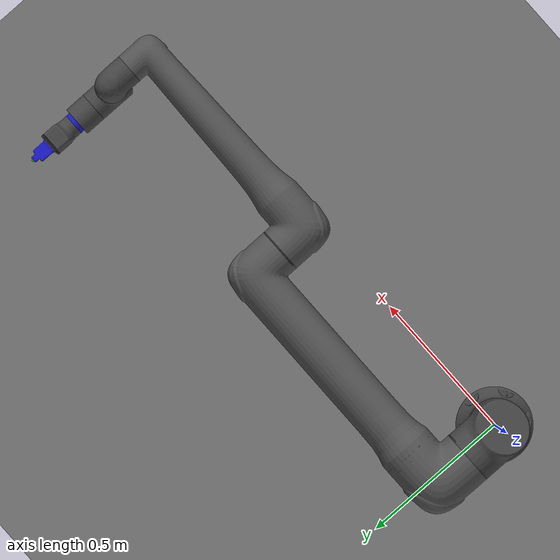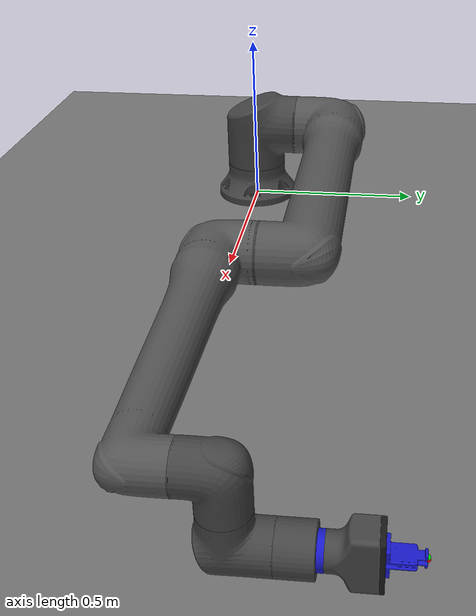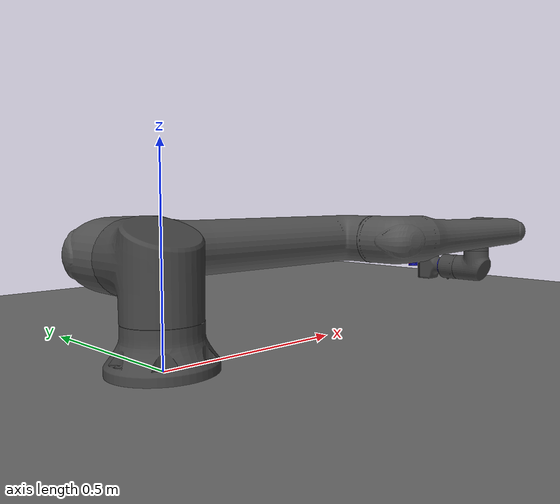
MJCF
<mujoco model="ur20">
  <compiler angle="radian" meshdir=".." autolimits="true"/>

  <option timestep="0.002" integrator="implicitfast" gravity="0 0 -9.81"/>

  <visual>
    <headlight ambient="0.35 0.35 0.35" diffuse="0.7 0.7 0.7" specular="0.5 0.5 0.5"/>
    <quality shadowsize="2048"/>
  </visual>

  <asset>
    <mesh name="base_col"     file="meshes/collision/base.stl"/>
    <mesh name="shoulder_col" file="meshes/collision/shoulder.stl"/>
    <mesh name="upperarm_col" file="meshes/collision/upperarm.stl"/>
    <mesh name="forearm_col"  file="meshes/collision/forearm.stl"/>
    <mesh name="wrist1_col"   file="meshes/collision/wrist1.stl"/>
    <mesh name="wrist2_col"   file="meshes/collision/wrist2.stl"/>
    <mesh name="wrist3_col"   file="meshes/collision/wrist3.stl"/>
    <mesh name="2FG14_basep1_col" file="meshes/collision/2FG14_basep1.STL"/>
    <mesh name="2FG14_basep2_col" file="meshes/collision/2FG14_basep2.STL"/>
    <mesh name="2FG14_basep3_col" file="meshes/collision/2FG14_basep3.STL"/>
    <mesh name="2FG14_gripper_finger_col" file="meshes/collision/2FG14_gripper_finger.STL"/>

    <mesh name="base_vis"     file="meshes/visual/base.obj"/>
    <mesh name="shoulder_vis" file="meshes/visual/shoulder.obj"/>
    <mesh name="upperarm_vis" file="meshes/visual/upperarm.obj"/>
    <mesh name="forearm_vis"  file="meshes/visual/forearm.obj"/>
    <mesh name="wrist1_vis"   file="meshes/visual/wrist1.obj"/>
    <mesh name="wrist2_vis"   file="meshes/visual/wrist2.obj"/>
    <mesh name="wrist3_vis"   file="meshes/visual/wrist3.obj"/>

    <material name="ur_metal"
              rgba="0.27 0.27 0.27 1"
              specular="0.85"
              shininess="0.75"
              reflectance="0.1"/>
    <material name="ur_link"
              rgba="0.33 0.33 0.33 1"
              specular="0.7"
              shininess="0.6"
              reflectance="0.05"/>
    <material name="floor_mat"
              rgba="0.45 0.45 0.45 1"
              specular="0.1"
              shininess="0.1"/>
    <material name="blue_plastic"
              rgba="0.1 0.1 0.8 1"
              specular="0.1"
              shininess="0.1"/>
    <material name="black_plastic"
              rgba="0.1 0.1 0.1 1"
              specular="0.1"
              shininess="0.1"/>
  </asset>

  <contact>
    <exclude body1="world"          body2="shoulder_link"/>
    <exclude body1="shoulder_link"  body2="upper_arm_link"/>
    <exclude body1="upper_arm_link" body2="forearm_link"/>
    <exclude body1="forearm_link"   body2="wrist_1_link"/>
    <exclude body1="wrist_1_link"   body2="wrist_2_link"/>
    <exclude body1="wrist_2_link"   body2="wrist_3_link"/>
    <!--might need to exclude more pairs for the gripper-->
  </contact>

  <worldbody>
    <light name="key"  pos="1 -1 3"  dir="-0.3 0.3 -1" diffuse="0.8 0.8 0.8" specular="0.4 0.4 0.4" castshadow="true"/>
    <light name="fill" pos="-2 1 2"  dir="0.5 -0.3 -1" diffuse="0.35 0.35 0.35" specular="0.1 0.1 0.1" castshadow="false"/>

    <geom name="floor" type="plane" size="2 2 0.1" material="floor_mat" contype="1" conaffinity="1"/>

    <geom name="base_vis" pos="0 0 0" quat="-1 0 0 0" type="mesh" mesh="base_vis"
          group="0" material="ur_metal" contype="0" conaffinity="0"/>
    <geom name="base_col" pos="0 0 0" quat="-1 0 0 0" type="mesh" mesh="base_col"
          group="3" contype="1" conaffinity="1"/>

    <!-- shoulder_link z-height from official URDF d1 = 0.2363 m -->
    <body name="shoulder_link" pos="0 0 0.2363" quat="0 0 0 1">
      <inertial pos="0 -0.0062 -0.061" quat="0.843524 0.480626 0.117639 -0.208871"
                mass="16.343" diaginertia="0.0887394 0.0883735 0.0720472"/>
      <joint name="shoulder_pan_joint" pos="0 0 0" axis="0 0 1"
             range="-6.28319 6.28319" actuatorfrcrange="-738 738"
             armature="0.1" damping="500"/>
      <geom name="shoulder_vis" quat="0 0 0 1" type="mesh" mesh="shoulder_vis"
            group="0" material="ur_metal" contype="0" conaffinity="0"/>
      <geom name="shoulder_col" quat="0 0 0 1" type="mesh" mesh="shoulder_col"
            group="3" contype="1" conaffinity="1"/>

      <body name="upper_arm_link" quat="0.707107 0.707107 0 0">
        <inertial pos="-0.3394 0 0.2098" quat="0.502566 0.497435 0.496798 0.503168"
                  mass="29.632" diaginertia="4.6659 4.63539 0.146106"/>
        <joint name="shoulder_lift_joint" pos="0 0 0" axis="0 0 1"
               range="-6.28319 6.28319" actuatorfrcrange="-738 738"
               armature="0.1" damping="500"/>
        <geom name="upperarm_vis" pos="0 0 0.26" quat="0.5 0.5 -0.5 -0.5" type="mesh" mesh="upperarm_vis"
              group="0" material="ur_link" contype="0" conaffinity="0"/>
        <geom name="upperarm_col" pos="0 0 0.26" quat="0.5 0.5 -0.5 -0.5" type="mesh" mesh="upperarm_col"
              group="3" contype="1" conaffinity="1"/>

        <!-- forearm pos from official URDF a2 = -0.862 m -->
        <body name="forearm_link" pos="-0.862 0 0">
          <inertial pos="-0.4053 0 0.0604" quat="0.510462 0.48933 0.490588 0.509223"
                    mass="7.879" diaginertia="0.75763 0.754423 0.0249668"/>
          <joint name="elbow_joint" pos="0 0 0" axis="0 0 1"
                 range="-3.14159 3.14159" actuatorfrcrange="-433 433"
                 armature="0.1" damping="300"/>
          <geom name="forearm_vis" pos="0 0 0.043" quat="0.5 0.5 -0.5 -0.5" type="mesh" mesh="forearm_vis"
                group="0" material="ur_link" contype="0" conaffinity="0"/>
          <geom name="forearm_col" pos="0 0 0.043" quat="0.5 0.5 -0.5 -0.5" type="mesh" mesh="forearm_col"
                group="3" contype="1" conaffinity="1"/>

          <!-- wrist_1 pos from official URDF a3=-0.7287, d4=0.201 -->
          <body name="wrist_1_link" pos="-0.7287 0 0.201">
            <inertial pos="0 -0.0393 -0.0026" quat="0.989529 0.121355 0.0147064 -0.0767408"
                      mass="3.054" diaginertia="0.00555247 0.00545771 0.00392982"/>
            <joint name="wrist_1_joint" pos="0 0 0" axis="0 0 1"
                   range="-6.28319 6.28319"
                   armature="0.05" damping="80"/>
            <geom name="wrist1_vis" pos="0 0 -0.0775" quat="0.707107 0.707107 0 0" type="mesh" mesh="wrist1_vis"
                  group="0" material="ur_metal" contype="0" conaffinity="0"/>
            <geom name="wrist1_col" pos="0 0 -0.0775" quat="0.707107 0.707107 0 0" type="mesh" mesh="wrist1_col"
                  group="3" contype="1" conaffinity="1"/>

            <!-- wrist_2 pos from official URDF d5=0.1593 -->
            <body name="wrist_2_link" pos="0 -0.1593 0" quat="0.707107 0.707107 0 0">
              <inertial pos="0 0.0379 -0.0024" quat="0.489074 -0.0502817 0.102168 0.864777"
                        mass="3.126" diaginertia="0.00586894 0.00585713 0.00418393"/>
              <joint name="wrist_2_joint" pos="0 0 0" axis="0 0 1"
                     range="-6.28319 6.28319"
                     armature="0.05" damping="80"/>
              <geom name="wrist2_vis" pos="0 0 -0.0749" quat="1 0 0 0" type="mesh" mesh="wrist2_vis"
                    group="0" material="ur_metal" contype="0" conaffinity="0"/>
              <geom name="wrist2_col" pos="0 0 -0.0749" quat="1 0 0 0" type="mesh" mesh="wrist2_col"
                    group="3" contype="1" conaffinity="1"/>

              <!-- wrist_3 pos from official URDF d6=0.1543 -->
              <body name="wrist_3_link" pos="0 0.1543 0" quat="0.707107 -0.707107 0 0">
                <inertial pos="0 0 -0.0293" quat="0.5 0.5 -0.5 0.5"
                          mass="0.926" diaginertia="0.00117 0.00092 0.00091"/>
                <joint name="wrist_3_joint" pos="0 0 0" axis="0 0 1"
                       range="-6.28319 6.28319"
                       armature="0.05" damping="40"/>
                <geom name="wrist3_vis" pos="0 0 -0.07" quat="0.707107 0.707107 0 0" type="mesh" mesh="wrist3_vis"
                      group="0" material="ur_metal" contype="0" conaffinity="0"/>
                <geom name="wrist3_col" pos="0 0 -0.07" quat="0.707107 0.707107 0 0" type="mesh" mesh="wrist3_col"
                      group="3" contype="1" conaffinity="1"/>

                <!--add the gripper here, basep1 through 3 is one piece with two fingers-->
                <body name="gripper" pos="0 0 0.0" quat="1.0 0.0 0 0">
                  <geom name="2FG14_basep1_col" pos="0 0 0" quat="1 0 0 0" type="mesh" mesh="2FG14_basep1_col"
                        group="0" material="blue_plastic" contype="1" conaffinity="1" density="2200"/>
                  <geom name="2FG14_basep2_col" pos="0 0 0.013" quat="1 0 0 0" type="mesh" mesh="2FG14_basep2_col"
                        group="0" material="ur_metal" contype="1" conaffinity="1" density="5000"/>
                  <geom name="2FG14_basep3_col" pos="0.0 0 .103" quat="0.707107 0 0 0.707107" type="mesh" mesh="2FG14_basep3_col"
                        group="0" material="black_plastic" contype="1" conaffinity="1" density="5000"/>
                  <site name="ee_site" pos="0 0 0" size="0.01" rgba="1 0 0 1"/>

                  <!-- finger bodies: slide joints allow symmetric opening/closing -->
                  <body name="finger_left" pos="0.0 -0.0025 .1137" quat="1 0 0 0">
                    <joint name="finger_left_slide" type="slide" pos="0 0 0" axis="0 -1 0"
                           range="-0.04 0.04" damping="50"/>
                    <geom name="finger_left_col" pos="0 0 0" quat="1 0 0 0" density="5000" type="mesh" mesh="2FG14_gripper_finger_col"
                          group="0" material="blue_plastic" friction="1 0.5 0.01" contype="1" conaffinity="1" />
                    <site name="finger_left_tip" pos="0.0 0.0 0.069" size="0.005" rgba="1 0 0 1"/>
                  </body>

                  <body name="finger_right" pos="0.0 0.0025 .1137" quat="0 0 0 1">
                    <joint name="finger_right_slide" type="slide" pos="0 0 0" axis="0 -1 0"
                           range="-0.04 0.04" damping="50"/>
                    <geom name="finger_right_col" pos="0 0 0" quat="1 0 0 0" density="5000" type="mesh" mesh="2FG14_gripper_finger_col"
                          group="0" material="blue_plastic" friction="1 0.5 0.01" contype="1" conaffinity="1"/>
                    <site name="finger_right_tip" pos="0 0.0 0.069" size="0.005" rgba="0 1 0 1"/>
                  </body>

                </body>
              </body>
            </body>
          </body>
        </body>
      </body>
    </body>
  </worldbody>

      <equality>
            <!-- couple the two finger slide joints so they move symmetrically -->
            <joint joint1="finger_left_slide" joint2="finger_right_slide" name="fingers_eq"
                               solref="0.02 1" solimp="0.9 0.95 0.001"/>
      </equality>

  <actuator>
    <!-- kv=0 required: MujocoSystem classifies actuators by biasprm[2]==0 for POSITION type.
         Velocity damping is handled by joint damping= attributes above. -->
    <position name="shoulder_pan"  joint="shoulder_pan_joint"  kp="12000" ctrlrange="-6.28319 6.28319"/>
    <position name="shoulder_lift" joint="shoulder_lift_joint" kp="12000" ctrlrange="-6.28319 6.28319"/>
    <position name="elbow"         joint="elbow_joint"         kp="8000"  ctrlrange="-3.14159 3.14159"/>
    <position name="wrist_1"       joint="wrist_1_joint"       kp="3000"  ctrlrange="-6.28319 6.28319"/>
    <position name="wrist_2"       joint="wrist_2_joint"       kp="3000"  ctrlrange="-6.28319 6.28319"/>
    <position name="wrist_3"       joint="wrist_3_joint"       kp="1500"  ctrlrange="-6.28319 6.28319"/>
    <!-- actuator to control finger pair; drives finger_left_slide, equality drives the right finger -->
    <position name="fingers" joint="finger_left_slide" kp="2000" ctrlrange="0.00245 0.028"/>
  </actuator>

  <keyframe>
    <key name="home" qpos="0 -1.5708 0 0 0 0" ctrl="0 -1.5708 0 0 0 0"/>
  </keyframe>

</mujoco>
